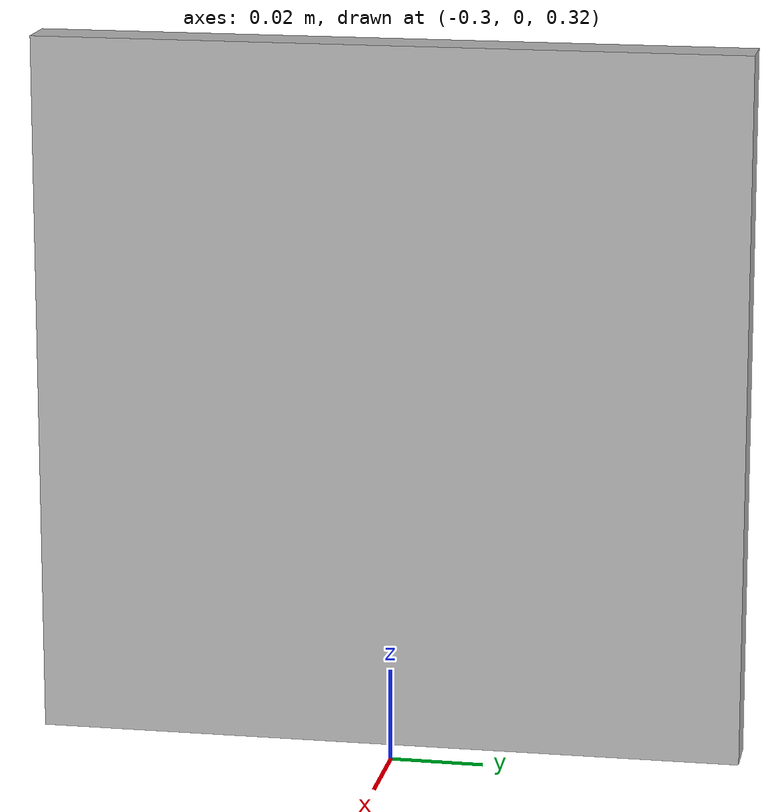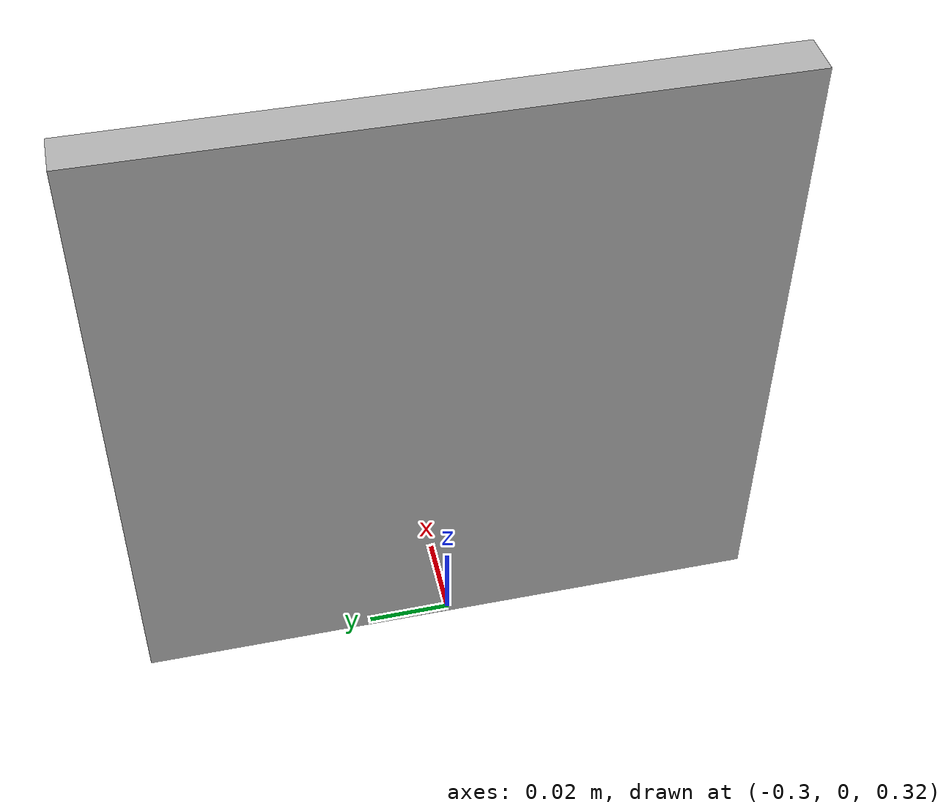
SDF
<?xml version="1.0" ?>
<sdf version="1.7">
  <world name="aruco_stereo_world">

    <plugin filename="ignition-gazebo-physics-system" name="ignition::gazebo::systems::Physics"/>
    <plugin filename="ignition-gazebo-user-commands-system" name="ignition::gazebo::systems::UserCommands"/>
    <plugin filename="ignition-gazebo-scene-broadcaster-system" name="ignition::gazebo::systems::SceneBroadcaster"/>

    <plugin filename="ignition-gazebo-sensors-system" name="ignition::gazebo::systems::Sensors">
         <render_engine>ogre2</render_engine>
    </plugin>

    <!-- Sun and Ground -->
    <include>
      <uri>model://sun</uri>
    </include>
    <include>
      <uri>model://ground_plane</uri>
    </include>

    <!-- Aruco marker -->
    <include>
      <uri>model://aruco_tag</uri>
      <pose>-0.3 0 0.4 -1.57 0 -1.57</pose>
    </include>

  </world>
</sdf>

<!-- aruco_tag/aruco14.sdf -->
<sdf version="1.7">
  <model name="aruco_tag">

    <static>true</static>

    <link name="aruco_link">
      <visual name="aruco_visual">
        <geometry>
          <mesh>
            <uri>model://aruco_tag/textures/aruco14.dae</uri>
          </mesh>
        </geometry>
      </visual>
    </link>

  </model>
</sdf>
